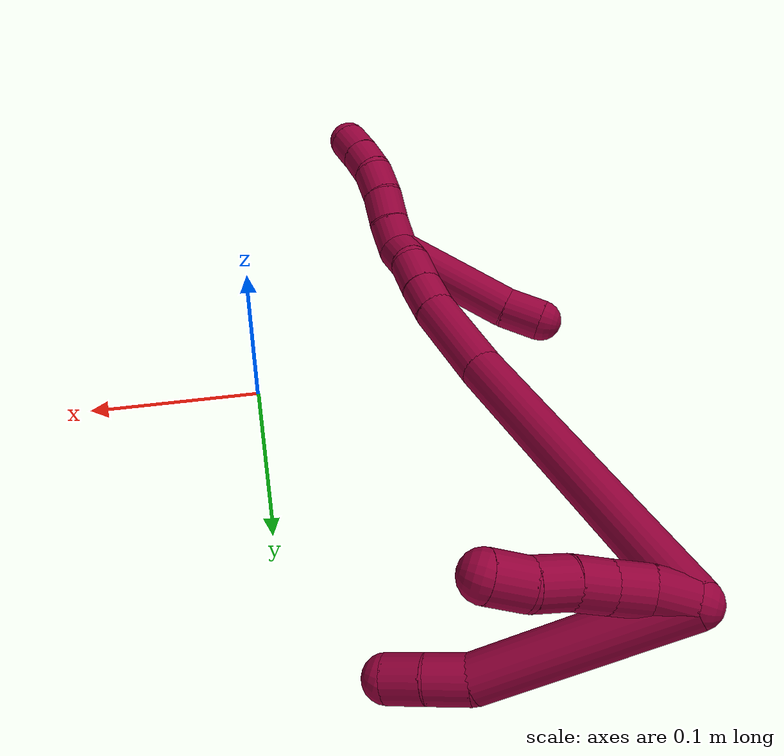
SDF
<sdf version="1.7">
 <world name="default">
  <model name="8">
   <static>0</static>
   <link name="8">
    <collision name="collision-cylinder-e_1_2_8">
     <pose>-0.021026 0.027389 -0.041438 -2.55755 -0.400426 1.18757</pose>
     <geometry><cylinder><radius>0.0125</radius><length>0.107876</length></cylinder></geometry>
     <surface>
      <friction><ode><mu>1.16</mu><mu2>1.16</mu2><slip1>0</slip1><slip2>0</slip2></ode></friction>
      <contact><ode><kp>1e+06</kp><kd>1</kd><max_vel>0</max_vel><min_depth>0.001</min_depth></ode></contact>
     </surface>
    </collision>
    <visual name="visual-cylinder-e_1_2_8">
     <pose>-0.021026 0.027389 -0.041438 -2.55755 -0.400426 1.18757</pose>
     <geometry><cylinder><radius>0.0125</radius><length>0.107876</length></cylinder></geometry>
     <material><ambient>0.584314 0 0.227451 1</ambient></material>
    </visual>
    <collision name="collision-cylinder-e_2_8_9">
     <pose>-0.044545 0.0577 -0.093182 -2.86531 -0.228727 1.38105</pose>
     <geometry><cylinder><radius>0.0125</radius><length>0.021998</length></cylinder></geometry>
     <surface>
      <friction><ode><mu>1.16</mu><mu2>1.16</mu2><slip1>0</slip1><slip2>0</slip2></ode></friction>
      <contact><ode><kp>1e+06</kp><kd>1</kd><max_vel>0</max_vel><min_depth>0.001</min_depth></ode></contact>
     </surface>
    </collision>
    <visual name="visual-cylinder-e_2_8_9">
     <pose>-0.044545 0.0577 -0.093182 -2.86531 -0.228727 1.38105</pose>
     <geometry><cylinder><radius>0.0125</radius><length>0.021998</length></cylinder></geometry>
     <material><ambient>0.584314 0 0.227451 1</ambient></material>
    </visual>
    <collision name="collision-cylinder-e_3_9_6">
     <pose>-0.050522 0.062978 -0.11263 -2.88938 -0.353454 1.90691</pose>
     <geometry><cylinder><radius>0.0125</radius><length>0.020126</length></cylinder></geometry>
     <surface>
      <friction><ode><mu>1.16</mu><mu2>1.16</mu2><slip1>0</slip1><slip2>0</slip2></ode></friction>
      <contact><ode><kp>1e+06</kp><kd>1</kd><max_vel>0</max_vel><min_depth>0.001</min_depth></ode></contact>
     </surface>
    </collision>
    <visual name="visual-cylinder-e_3_9_6">
     <pose>-0.050522 0.062978 -0.11263 -2.88938 -0.353454 1.90691</pose>
     <geometry><cylinder><radius>0.0125</radius><length>0.020126</length></cylinder></geometry>
     <material><ambient>0.584314 0 0.227451 1</ambient></material>
    </visual>
    <collision name="collision-cylinder-e_1_2_10">
     <pose>0.0001 0.000715 -0.009974 -3.07003 0.01003 -0.278403</pose>
     <geometry><cylinder><radius>0.0125</radius><length>0.02</length></cylinder></geometry>
     <surface>
      <friction><ode><mu>1.16</mu><mu2>1.16</mu2><slip1>0</slip1><slip2>0</slip2></ode></friction>
      <contact><ode><kp>1e+06</kp><kd>1</kd><max_vel>0</max_vel><min_depth>0.001</min_depth></ode></contact>
     </surface>
    </collision>
    <visual name="visual-cylinder-e_1_2_10">
     <pose>0.0001 0.000715 -0.009974 -3.07003 0.01003 -0.278403</pose>
     <geometry><cylinder><radius>0.0125</radius><length>0.02</length></cylinder></geometry>
     <material><ambient>0.584314 0 0.227451 1</ambient></material>
    </visual>
    <collision name="collision-cylinder-e_2_10_11">
     <pose>0.002502 0.004245 -0.029264 -2.84817 0.232176 -1.33615</pose>
     <geometry><cylinder><radius>0.0125</radius><length>0.02</length></cylinder></geometry>
     <surface>
      <friction><ode><mu>1.16</mu><mu2>1.16</mu2><slip1>0</slip1><slip2>0</slip2></ode></friction>
      <contact><ode><kp>1e+06</kp><kd>1</kd><max_vel>0</max_vel><min_depth>0.001</min_depth></ode></contact>
     </surface>
    </collision>
    <visual name="visual-cylinder-e_2_10_11">
     <pose>0.002502 0.004245 -0.029264 -2.84817 0.232176 -1.33615</pose>
     <geometry><cylinder><radius>0.0125</radius><length>0.02</length></cylinder></geometry>
     <material><ambient>0.584314 0 0.227451 1</ambient></material>
    </visual>
    <collision name="collision-cylinder-e_3_11_12">
     <pose>0.009054 0.010185 -0.047073 -2.78897 0.43917 -1.79421</pose>
     <geometry><cylinder><radius>0.0125</radius><length>0.02</length></cylinder></geometry>
     <surface>
      <friction><ode><mu>1.16</mu><mu2>1.16</mu2><slip1>0</slip1><slip2>0</slip2></ode></friction>
      <contact><ode><kp>1e+06</kp><kd>1</kd><max_vel>0</max_vel><min_depth>0.001</min_depth></ode></contact>
     </surface>
    </collision>
    <visual name="visual-cylinder-e_3_11_12">
     <pose>0.009054 0.010185 -0.047073 -2.78897 0.43917 -1.79421</pose>
     <geometry><cylinder><radius>0.0125</radius><length>0.02</length></cylinder></geometry>
     <material><ambient>0.584314 0 0.227451 1</ambient></material>
    </visual>
    <collision name="collision-cylinder-e_4_12_13">
     <pose>0.017129 0.017768 -0.063662 -2.63827 0.39227 -1.31583</pose>
     <geometry><cylinder><radius>0.0125</radius><length>0.02</length></cylinder></geometry>
     <surface>
      <friction><ode><mu>1.16</mu><mu2>1.16</mu2><slip1>0</slip1><slip2>0</slip2></ode></friction>
      <contact><ode><kp>1e+06</kp><kd>1</kd><max_vel>0</max_vel><min_depth>0.001</min_depth></ode></contact>
     </surface>
    </collision>
    <visual name="visual-cylinder-e_4_12_13">
     <pose>0.017129 0.017768 -0.063662 -2.63827 0.39227 -1.31583</pose>
     <geometry><cylinder><radius>0.0125</radius><length>0.02</length></cylinder></geometry>
     <material><ambient>0.584314 0 0.227451 1</ambient></material>
    </visual>
    <collision name="collision-cylinder-e_5_13_5">
     <pose>0.024269 0.024473 -0.080919 -2.90102 0.338145 -1.90934</pose>
     <geometry><cylinder><radius>0.0125</radius><length>0.02</length></cylinder></geometry>
     <surface>
      <friction><ode><mu>1.16</mu><mu2>1.16</mu2><slip1>0</slip1><slip2>0</slip2></ode></friction>
      <contact><ode><kp>1e+06</kp><kd>1</kd><max_vel>0</max_vel><min_depth>0.001</min_depth></ode></contact>
     </surface>
    </collision>
    <visual name="visual-cylinder-e_5_13_5">
     <pose>0.024269 0.024473 -0.080919 -2.90102 0.338145 -1.90934</pose>
     <geometry><cylinder><radius>0.0125</radius><length>0.02</length></cylinder></geometry>
     <material><ambient>0.584314 0 0.227451 1</ambient></material>
    </visual>
    <collision name="collision-cylinder-e_1_2_14">
     <pose>-0.031385 -0.057382 -0.062857 2.4017 -0.353286 -0.862763</pose>
     <geometry><cylinder><radius>0.0125</radius><length>0.181425</length></cylinder></geometry>
     <surface>
      <friction><ode><mu>1.16</mu><mu2>1.16</mu2><slip1>0</slip1><slip2>0</slip2></ode></friction>
      <contact><ode><kp>1e+06</kp><kd>1</kd><max_vel>0</max_vel><min_depth>0.001</min_depth></ode></contact>
     </surface>
    </collision>
    <visual name="visual-cylinder-e_1_2_14">
     <pose>-0.031385 -0.057382 -0.062857 2.4017 -0.353286 -0.862763</pose>
     <geometry><cylinder><radius>0.0125</radius><length>0.181425</length></cylinder></geometry>
     <material><ambient>0.584314 0 0.227451 1</ambient></material>
    </visual>
    <collision name="collision-cylinder-e_2_14_15">
     <pose>-0.069763 -0.133032 -0.145005 2.38343 -0.257374 -0.628185</pose>
     <geometry><cylinder><radius>0.0125</radius><length>0.054944</length></cylinder></geometry>
     <surface>
      <friction><ode><mu>1.16</mu><mu2>1.16</mu2><slip1>0</slip1><slip2>0</slip2></ode></friction>
      <contact><ode><kp>1e+06</kp><kd>1</kd><max_vel>0</max_vel><min_depth>0.001</min_depth></ode></contact>
     </surface>
    </collision>
    <visual name="visual-cylinder-e_2_14_15">
     <pose>-0.069763 -0.133032 -0.145005 2.38343 -0.257374 -0.628185</pose>
     <geometry><cylinder><radius>0.0125</radius><length>0.054944</length></cylinder></geometry>
     <material><ambient>0.584314 0 0.227451 1</ambient></material>
    </visual>
    <collision name="collision-cylinder-e_3_15_16">
     <pose>-0.078646 -0.158857 -0.170772 2.27929 -0.18773 -0.403723</pose>
     <geometry><cylinder><radius>0.0125</radius><length>0.020262</length></cylinder></geometry>
     <surface>
      <friction><ode><mu>1.16</mu><mu2>1.16</mu2><slip1>0</slip1><slip2>0</slip2></ode></friction>
      <contact><ode><kp>1e+06</kp><kd>1</kd><max_vel>0</max_vel><min_depth>0.001</min_depth></ode></contact>
     </surface>
    </collision>
    <visual name="visual-cylinder-e_3_15_16">
     <pose>-0.078646 -0.158857 -0.170772 2.27929 -0.18773 -0.403723</pose>
     <geometry><cylinder><radius>0.0125</radius><length>0.020262</length></cylinder></geometry>
     <material><ambient>0.584314 0 0.227451 1</ambient></material>
    </visual>
    <collision name="collision-cylinder-e_4_16_17">
     <pose>-0.082531 -0.174925 -0.183654 2.2161 -0.18507 -0.367833</pose>
     <geometry><cylinder><radius>0.0125</radius><length>0.021673</length></cylinder></geometry>
     <surface>
      <friction><ode><mu>1.16</mu><mu2>1.16</mu2><slip1>0</slip1><slip2>0</slip2></ode></friction>
      <contact><ode><kp>1e+06</kp><kd>1</kd><max_vel>0</max_vel><min_depth>0.001</min_depth></ode></contact>
     </surface>
    </collision>
    <visual name="visual-cylinder-e_4_16_17">
     <pose>-0.082531 -0.174925 -0.183654 2.2161 -0.18507 -0.367833</pose>
     <geometry><cylinder><radius>0.0125</radius><length>0.021673</length></cylinder></geometry>
     <material><ambient>0.584314 0 0.227451 1</ambient></material>
    </visual>
    <collision name="collision-cylinder-e_5_17_1">
     <pose>-0.089891 -0.190517 -0.196282 2.29156 -0.517441 -1.05823</pose>
     <geometry><cylinder><radius>0.0125</radius><length>0.021695</length></cylinder></geometry>
     <surface>
      <friction><ode><mu>1.16</mu><mu2>1.16</mu2><slip1>0</slip1><slip2>0</slip2></ode></friction>
      <contact><ode><kp>1e+06</kp><kd>1</kd><max_vel>0</max_vel><min_depth>0.001</min_depth></ode></contact>
     </surface>
    </collision>
    <visual name="visual-cylinder-e_5_17_1">
     <pose>-0.089891 -0.190517 -0.196282 2.29156 -0.517441 -1.05823</pose>
     <geometry><cylinder><radius>0.0125</radius><length>0.021695</length></cylinder></geometry>
     <material><ambient>0.584314 0 0.227451 1</ambient></material>
    </visual>
    <collision name="collision-cylinder-e_1_1_18">
     <pose>-0.093461 -0.205533 -0.208321 2.20348 0.180563 0.353538</pose>
     <geometry><cylinder><radius>0.0125</radius><length>0.02</length></cylinder></geometry>
     <surface>
      <friction><ode><mu>1.16</mu><mu2>1.16</mu2><slip1>0</slip1><slip2>0</slip2></ode></friction>
      <contact><ode><kp>1e+06</kp><kd>1</kd><max_vel>0</max_vel><min_depth>0.001</min_depth></ode></contact>
     </surface>
    </collision>
    <visual name="visual-cylinder-e_1_1_18">
     <pose>-0.093461 -0.205533 -0.208321 2.20348 0.180563 0.353538</pose>
     <geometry><cylinder><radius>0.0125</radius><length>0.02</length></cylinder></geometry>
     <material><ambient>0.584314 0 0.227451 1</ambient></material>
    </visual>
    <collision name="collision-cylinder-e_2_18_19">
     <pose>-0.090392 -0.221968 -0.219249 2.11208 0.12766 0.225051</pose>
     <geometry><cylinder><radius>0.0125</radius><length>0.02</length></cylinder></geometry>
     <surface>
      <friction><ode><mu>1.16</mu><mu2>1.16</mu2><slip1>0</slip1><slip2>0</slip2></ode></friction>
      <contact><ode><kp>1e+06</kp><kd>1</kd><max_vel>0</max_vel><min_depth>0.001</min_depth></ode></contact>
     </surface>
    </collision>
    <visual name="visual-cylinder-e_2_18_19">
     <pose>-0.090392 -0.221968 -0.219249 2.11208 0.12766 0.225051</pose>
     <geometry><cylinder><radius>0.0125</radius><length>0.02</length></cylinder></geometry>
     <material><ambient>0.584314 0 0.227451 1</ambient></material>
    </visual>
    <collision name="collision-cylinder-e_3_19_20">
     <pose>-0.088873 -0.238496 -0.230317 2.20929 0.024657 0.049</pose>
     <geometry><cylinder><radius>0.0125</radius><length>0.02</length></cylinder></geometry>
     <surface>
      <friction><ode><mu>1.16</mu><mu2>1.16</mu2><slip1>0</slip1><slip2>0</slip2></ode></friction>
      <contact><ode><kp>1e+06</kp><kd>1</kd><max_vel>0</max_vel><min_depth>0.001</min_depth></ode></contact>
     </surface>
    </collision>
    <visual name="visual-cylinder-e_3_19_20">
     <pose>-0.088873 -0.238496 -0.230317 2.20929 0.024657 0.049</pose>
     <geometry><cylinder><radius>0.0125</radius><length>0.02</length></cylinder></geometry>
     <material><ambient>0.584314 0 0.227451 1</ambient></material>
    </visual>
    <collision name="collision-cylinder-e_4_20_21">
     <pose>-0.091044 -0.253617 -0.242896 2.32175 -0.244266 -0.550597</pose>
     <geometry><cylinder><radius>0.0125</radius><length>0.02</length></cylinder></geometry>
     <surface>
      <friction><ode><mu>1.16</mu><mu2>1.16</mu2><slip1>0</slip1><slip2>0</slip2></ode></friction>
      <contact><ode><kp>1e+06</kp><kd>1</kd><max_vel>0</max_vel><min_depth>0.001</min_depth></ode></contact>
     </surface>
    </collision>
    <visual name="visual-cylinder-e_4_20_21">
     <pose>-0.091044 -0.253617 -0.242896 2.32175 -0.244266 -0.550597</pose>
     <geometry><cylinder><radius>0.0125</radius><length>0.02</length></cylinder></geometry>
     <material><ambient>0.584314 0 0.227451 1</ambient></material>
    </visual>
    <collision name="collision-cylinder-e_5_21_4">
     <pose>-0.095948 -0.267381 -0.25654 2.38188 -0.25118 -0.612562</pose>
     <geometry><cylinder><radius>0.0125</radius><length>0.02</length></cylinder></geometry>
     <surface>
      <friction><ode><mu>1.16</mu><mu2>1.16</mu2><slip1>0</slip1><slip2>0</slip2></ode></friction>
      <contact><ode><kp>1e+06</kp><kd>1</kd><max_vel>0</max_vel><min_depth>0.001</min_depth></ode></contact>
     </surface>
    </collision>
    <visual name="visual-cylinder-e_5_21_4">
     <pose>-0.095948 -0.267381 -0.25654 2.38188 -0.25118 -0.612562</pose>
     <geometry><cylinder><radius>0.0125</radius><length>0.02</length></cylinder></geometry>
     <material><ambient>0.584314 0 0.227451 1</ambient></material>
    </visual>
    <collision name="collision-cylinder-e_1_1_22">
     <pose>-0.099664 -0.1901 -0.165057 -0.197681 -0.114878 0.011404</pose>
     <geometry><cylinder><radius>0.0125</radius><length>0.076888</length></cylinder></geometry>
     <surface>
      <friction><ode><mu>1.16</mu><mu2>1.16</mu2><slip1>0</slip1><slip2>0</slip2></ode></friction>
      <contact><ode><kp>1e+06</kp><kd>1</kd><max_vel>0</max_vel><min_depth>0.001</min_depth></ode></contact>
     </surface>
    </collision>
    <visual name="visual-cylinder-e_1_1_22">
     <pose>-0.099664 -0.1901 -0.165057 -0.197681 -0.114878 0.011404</pose>
     <geometry><cylinder><radius>0.0125</radius><length>0.076888</length></cylinder></geometry>
     <material><ambient>0.584314 0 0.227451 1</ambient></material>
    </visual>
    <collision name="collision-cylinder-e_2_22_3">
     <pose>-0.104436 -0.181768 -0.11609 -0.072013 -0.031624 0.001139</pose>
     <geometry><cylinder><radius>0.0125</radius><length>0.023112</length></cylinder></geometry>
     <surface>
      <friction><ode><mu>1.16</mu><mu2>1.16</mu2><slip1>0</slip1><slip2>0</slip2></ode></friction>
      <contact><ode><kp>1e+06</kp><kd>1</kd><max_vel>0</max_vel><min_depth>0.001</min_depth></ode></contact>
     </surface>
    </collision>
    <visual name="visual-cylinder-e_2_22_3">
     <pose>-0.104436 -0.181768 -0.11609 -0.072013 -0.031624 0.001139</pose>
     <geometry><cylinder><radius>0.0125</radius><length>0.023112</length></cylinder></geometry>
     <material><ambient>0.584314 0 0.227451 1</ambient></material>
    </visual>
    <collision name="collision-sphere-3">
     <pose>-0.104801 -0.180937 -0.10457 0 -0 0</pose>
     <geometry><sphere><radius>0.0125</radius></sphere></geometry>
     <surface>
      <friction><ode><mu>1.16</mu><mu2>1.16</mu2><slip1>0</slip1><slip2>0</slip2></ode></friction>
      <contact><ode><kp>1e+06</kp><kd>1</kd><max_vel>0</max_vel><min_depth>0.001</min_depth></ode></contact>
     </surface>
    </collision>
    <visual name="visual-sphere-3">
     <pose>-0.104801 -0.180937 -0.10457 0 -0 0</pose>
     <geometry><sphere><radius>0.0125</radius></sphere></geometry>
     <material><ambient>0.584314 0 0.227451 1</ambient></material>
    </visual>
    <collision name="collision-sphere-22">
     <pose>-0.10407 -0.182599 -0.12761 0 -0 0</pose>
     <geometry><sphere><radius>0.0125</radius></sphere></geometry>
     <surface>
      <friction><ode><mu>1.16</mu><mu2>1.16</mu2><slip1>0</slip1><slip2>0</slip2></ode></friction>
      <contact><ode><kp>1e+06</kp><kd>1</kd><max_vel>0</max_vel><min_depth>0.001</min_depth></ode></contact>
     </surface>
    </collision>
    <visual name="visual-sphere-22">
     <pose>-0.10407 -0.182599 -0.12761 0 -0 0</pose>
     <geometry><sphere><radius>0.0125</radius></sphere></geometry>
     <material><ambient>0.584314 0 0.227451 1</ambient></material>
    </visual>
    <collision name="collision-sphere-4">
     <pose>-0.098434 -0.274052 -0.263562 0 -0 0</pose>
     <geometry><sphere><radius>0.0125</radius></sphere></geometry>
     <surface>
      <friction><ode><mu>1.16</mu><mu2>1.16</mu2><slip1>0</slip1><slip2>0</slip2></ode></friction>
      <contact><ode><kp>1e+06</kp><kd>1</kd><max_vel>0</max_vel><min_depth>0.001</min_depth></ode></contact>
     </surface>
    </collision>
    <visual name="visual-sphere-4">
     <pose>-0.098434 -0.274052 -0.263562 0 -0 0</pose>
     <geometry><sphere><radius>0.0125</radius></sphere></geometry>
     <material><ambient>0.584314 0 0.227451 1</ambient></material>
    </visual>
    <collision name="collision-sphere-21">
     <pose>-0.093463 -0.26071 -0.249517 0 -0 0</pose>
     <geometry><sphere><radius>0.0125</radius></sphere></geometry>
     <surface>
      <friction><ode><mu>1.16</mu><mu2>1.16</mu2><slip1>0</slip1><slip2>0</slip2></ode></friction>
      <contact><ode><kp>1e+06</kp><kd>1</kd><max_vel>0</max_vel><min_depth>0.001</min_depth></ode></contact>
     </surface>
    </collision>
    <visual name="visual-sphere-21">
     <pose>-0.093463 -0.26071 -0.249517 0 -0 0</pose>
     <geometry><sphere><radius>0.0125</radius></sphere></geometry>
     <material><ambient>0.584314 0 0.227451 1</ambient></material>
    </visual>
    <collision name="collision-sphere-20">
     <pose>-0.088626 -0.246523 -0.236275 0 -0 0</pose>
     <geometry><sphere><radius>0.0125</radius></sphere></geometry>
     <surface>
      <friction><ode><mu>1.16</mu><mu2>1.16</mu2><slip1>0</slip1><slip2>0</slip2></ode></friction>
      <contact><ode><kp>1e+06</kp><kd>1</kd><max_vel>0</max_vel><min_depth>0.001</min_depth></ode></contact>
     </surface>
    </collision>
    <visual name="visual-sphere-20">
     <pose>-0.088626 -0.246523 -0.236275 0 -0 0</pose>
     <geometry><sphere><radius>0.0125</radius></sphere></geometry>
     <material><ambient>0.584314 0 0.227451 1</ambient></material>
    </visual>
    <collision name="collision-sphere-11">
     <pose>0.004803 0.007059 -0.038579 0 -0 0</pose>
     <geometry><sphere><radius>0.0125</radius></sphere></geometry>
     <surface>
      <friction><ode><mu>1.16</mu><mu2>1.16</mu2><slip1>0</slip1><slip2>0</slip2></ode></friction>
      <contact><ode><kp>1e+06</kp><kd>1</kd><max_vel>0</max_vel><min_depth>0.001</min_depth></ode></contact>
     </surface>
    </collision>
    <visual name="visual-sphere-11">
     <pose>0.004803 0.007059 -0.038579 0 -0 0</pose>
     <geometry><sphere><radius>0.0125</radius></sphere></geometry>
     <material><ambient>0.584314 0 0.227451 1</ambient></material>
    </visual>
    <collision name="collision-sphere-10">
     <pose>0.000201 0.00143 -0.019948 0 -0 0</pose>
     <geometry><sphere><radius>0.0125</radius></sphere></geometry>
     <surface>
      <friction><ode><mu>1.16</mu><mu2>1.16</mu2><slip1>0</slip1><slip2>0</slip2></ode></friction>
      <contact><ode><kp>1e+06</kp><kd>1</kd><max_vel>0</max_vel><min_depth>0.001</min_depth></ode></contact>
     </surface>
    </collision>
    <visual name="visual-sphere-10">
     <pose>0.000201 0.00143 -0.019948 0 -0 0</pose>
     <geometry><sphere><radius>0.0125</radius></sphere></geometry>
     <material><ambient>0.584314 0 0.227451 1</ambient></material>
    </visual>
    <collision name="collision-sphere-6">
     <pose>-0.054005 0.065334 -0.121772 0 -0 0</pose>
     <geometry><sphere><radius>0.0125</radius></sphere></geometry>
     <surface>
      <friction><ode><mu>1.16</mu><mu2>1.16</mu2><slip1>0</slip1><slip2>0</slip2></ode></friction>
      <contact><ode><kp>1e+06</kp><kd>1</kd><max_vel>0</max_vel><min_depth>0.001</min_depth></ode></contact>
     </surface>
    </collision>
    <visual name="visual-sphere-6">
     <pose>-0.054005 0.065334 -0.121772 0 -0 0</pose>
     <geometry><sphere><radius>0.0125</radius></sphere></geometry>
     <material><ambient>0.584314 0 0.227451 1</ambient></material>
    </visual>
    <collision name="collision-sphere-9">
     <pose>-0.047039 0.060622 -0.103488 0 -0 0</pose>
     <geometry><sphere><radius>0.0125</radius></sphere></geometry>
     <surface>
      <friction><ode><mu>1.16</mu><mu2>1.16</mu2><slip1>0</slip1><slip2>0</slip2></ode></friction>
      <contact><ode><kp>1e+06</kp><kd>1</kd><max_vel>0</max_vel><min_depth>0.001</min_depth></ode></contact>
     </surface>
    </collision>
    <visual name="visual-sphere-9">
     <pose>-0.047039 0.060622 -0.103488 0 -0 0</pose>
     <geometry><sphere><radius>0.0125</radius></sphere></geometry>
     <material><ambient>0.584314 0 0.227451 1</ambient></material>
    </visual>
    <collision name="collision-sphere-2">
     <geometry><sphere><radius>0.0125</radius></sphere></geometry>
     <surface>
      <friction><ode><mu>1.16</mu><mu2>1.16</mu2><slip1>0</slip1><slip2>0</slip2></ode></friction>
      <contact><ode><kp>1e+06</kp><kd>1</kd><max_vel>0</max_vel><min_depth>0.001</min_depth></ode></contact>
     </surface>
    </collision>
    <visual name="visual-sphere-2">
     <geometry><sphere><radius>0.0125</radius></sphere></geometry>
     <material><ambient>0.584314 0 0.227451 1</ambient></material>
    </visual>
    <collision name="collision-sphere-19">
     <pose>-0.089119 -0.230468 -0.224359 0 -0 0</pose>
     <geometry><sphere><radius>0.0125</radius></sphere></geometry>
     <surface>
      <friction><ode><mu>1.16</mu><mu2>1.16</mu2><slip1>0</slip1><slip2>0</slip2></ode></friction>
      <contact><ode><kp>1e+06</kp><kd>1</kd><max_vel>0</max_vel><min_depth>0.001</min_depth></ode></contact>
     </surface>
    </collision>
    <visual name="visual-sphere-19">
     <pose>-0.089119 -0.230468 -0.224359 0 -0 0</pose>
     <geometry><sphere><radius>0.0125</radius></sphere></geometry>
     <material><ambient>0.584314 0 0.227451 1</ambient></material>
    </visual>
    <collision name="collision-sphere-8">
     <pose>-0.042051 0.054778 -0.082875 0 -0 0</pose>
     <geometry><sphere><radius>0.0125</radius></sphere></geometry>
     <surface>
      <friction><ode><mu>1.16</mu><mu2>1.16</mu2><slip1>0</slip1><slip2>0</slip2></ode></friction>
      <contact><ode><kp>1e+06</kp><kd>1</kd><max_vel>0</max_vel><min_depth>0.001</min_depth></ode></contact>
     </surface>
    </collision>
    <visual name="visual-sphere-8">
     <pose>-0.042051 0.054778 -0.082875 0 -0 0</pose>
     <geometry><sphere><radius>0.0125</radius></sphere></geometry>
     <material><ambient>0.584314 0 0.227451 1</ambient></material>
    </visual>
    <collision name="collision-sphere-12">
     <pose>0.013306 0.013311 -0.055568 0 -0 0</pose>
     <geometry><sphere><radius>0.0125</radius></sphere></geometry>
     <surface>
      <friction><ode><mu>1.16</mu><mu2>1.16</mu2><slip1>0</slip1><slip2>0</slip2></ode></friction>
      <contact><ode><kp>1e+06</kp><kd>1</kd><max_vel>0</max_vel><min_depth>0.001</min_depth></ode></contact>
     </surface>
    </collision>
    <visual name="visual-sphere-12">
     <pose>0.013306 0.013311 -0.055568 0 -0 0</pose>
     <geometry><sphere><radius>0.0125</radius></sphere></geometry>
     <material><ambient>0.584314 0 0.227451 1</ambient></material>
    </visual>
    <collision name="collision-sphere-13">
     <pose>0.020952 0.022225 -0.071756 0 -0 0</pose>
     <geometry><sphere><radius>0.0125</radius></sphere></geometry>
     <surface>
      <friction><ode><mu>1.16</mu><mu2>1.16</mu2><slip1>0</slip1><slip2>0</slip2></ode></friction>
      <contact><ode><kp>1e+06</kp><kd>1</kd><max_vel>0</max_vel><min_depth>0.001</min_depth></ode></contact>
     </surface>
    </collision>
    <visual name="visual-sphere-13">
     <pose>0.020952 0.022225 -0.071756 0 -0 0</pose>
     <geometry><sphere><radius>0.0125</radius></sphere></geometry>
     <material><ambient>0.584314 0 0.227451 1</ambient></material>
    </visual>
    <collision name="collision-sphere-5">
     <pose>0.027587 0.026721 -0.090081 0 -0 0</pose>
     <geometry><sphere><radius>0.0125</radius></sphere></geometry>
     <surface>
      <friction><ode><mu>1.16</mu><mu2>1.16</mu2><slip1>0</slip1><slip2>0</slip2></ode></friction>
      <contact><ode><kp>1e+06</kp><kd>1</kd><max_vel>0</max_vel><min_depth>0.001</min_depth></ode></contact>
     </surface>
    </collision>
    <visual name="visual-sphere-5">
     <pose>0.027587 0.026721 -0.090081 0 -0 0</pose>
     <geometry><sphere><radius>0.0125</radius></sphere></geometry>
     <material><ambient>0.584314 0 0.227451 1</ambient></material>
    </visual>
    <collision name="collision-sphere-14">
     <pose>-0.06277 -0.114765 -0.125715 0 -0 0</pose>
     <geometry><sphere><radius>0.0125</radius></sphere></geometry>
     <surface>
      <friction><ode><mu>1.16</mu><mu2>1.16</mu2><slip1>0</slip1><slip2>0</slip2></ode></friction>
      <contact><ode><kp>1e+06</kp><kd>1</kd><max_vel>0</max_vel><min_depth>0.001</min_depth></ode></contact>
     </surface>
    </collision>
    <visual name="visual-sphere-14">
     <pose>-0.06277 -0.114765 -0.125715 0 -0 0</pose>
     <geometry><sphere><radius>0.0125</radius></sphere></geometry>
     <material><ambient>0.584314 0 0.227451 1</ambient></material>
    </visual>
    <collision name="collision-sphere-15">
     <pose>-0.076756 -0.151299 -0.164296 0 -0 0</pose>
     <geometry><sphere><radius>0.0125</radius></sphere></geometry>
     <surface>
      <friction><ode><mu>1.16</mu><mu2>1.16</mu2><slip1>0</slip1><slip2>0</slip2></ode></friction>
      <contact><ode><kp>1e+06</kp><kd>1</kd><max_vel>0</max_vel><min_depth>0.001</min_depth></ode></contact>
     </surface>
    </collision>
    <visual name="visual-sphere-15">
     <pose>-0.076756 -0.151299 -0.164296 0 -0 0</pose>
     <geometry><sphere><radius>0.0125</radius></sphere></geometry>
     <material><ambient>0.584314 0 0.227451 1</ambient></material>
    </visual>
    <collision name="collision-sphere-16">
     <pose>-0.080537 -0.166415 -0.177248 0 -0 0</pose>
     <geometry><sphere><radius>0.0125</radius></sphere></geometry>
     <surface>
      <friction><ode><mu>1.16</mu><mu2>1.16</mu2><slip1>0</slip1><slip2>0</slip2></ode></friction>
      <contact><ode><kp>1e+06</kp><kd>1</kd><max_vel>0</max_vel><min_depth>0.001</min_depth></ode></contact>
     </surface>
    </collision>
    <visual name="visual-sphere-16">
     <pose>-0.080537 -0.166415 -0.177248 0 -0 0</pose>
     <geometry><sphere><radius>0.0125</radius></sphere></geometry>
     <material><ambient>0.584314 0 0.227451 1</ambient></material>
    </visual>
    <collision name="collision-sphere-17">
     <pose>-0.084525 -0.183434 -0.190061 0 -0 0</pose>
     <geometry><sphere><radius>0.0125</radius></sphere></geometry>
     <surface>
      <friction><ode><mu>1.16</mu><mu2>1.16</mu2><slip1>0</slip1><slip2>0</slip2></ode></friction>
      <contact><ode><kp>1e+06</kp><kd>1</kd><max_vel>0</max_vel><min_depth>0.001</min_depth></ode></contact>
     </surface>
    </collision>
    <visual name="visual-sphere-17">
     <pose>-0.084525 -0.183434 -0.190061 0 -0 0</pose>
     <geometry><sphere><radius>0.0125</radius></sphere></geometry>
     <material><ambient>0.584314 0 0.227451 1</ambient></material>
    </visual>
    <collision name="collision-sphere-1">
     <pose>-0.095257 -0.1976 -0.202504 0 -0 0</pose>
     <geometry><sphere><radius>0.0125</radius></sphere></geometry>
     <surface>
      <friction><ode><mu>1.16</mu><mu2>1.16</mu2><slip1>0</slip1><slip2>0</slip2></ode></friction>
      <contact><ode><kp>1e+06</kp><kd>1</kd><max_vel>0</max_vel><min_depth>0.001</min_depth></ode></contact>
     </surface>
    </collision>
    <visual name="visual-sphere-1">
     <pose>-0.095257 -0.1976 -0.202504 0 -0 0</pose>
     <geometry><sphere><radius>0.0125</radius></sphere></geometry>
     <material><ambient>0.584314 0 0.227451 1</ambient></material>
    </visual>
    <collision name="collision-sphere-18">
     <pose>-0.091665 -0.213467 -0.214138 0 -0 0</pose>
     <geometry><sphere><radius>0.0125</radius></sphere></geometry>
     <surface>
      <friction><ode><mu>1.16</mu><mu2>1.16</mu2><slip1>0</slip1><slip2>0</slip2></ode></friction>
      <contact><ode><kp>1e+06</kp><kd>1</kd><max_vel>0</max_vel><min_depth>0.001</min_depth></ode></contact>
     </surface>
    </collision>
    <visual name="visual-sphere-18">
     <pose>-0.091665 -0.213467 -0.214138 0 -0 0</pose>
     <geometry><sphere><radius>0.0125</radius></sphere></geometry>
     <material><ambient>0.584314 0 0.227451 1</ambient></material>
    </visual>
    <inertial>
     <pose>-0.049779 -0.086375 -0.11066 0 -0 0</pose>
     <mass>0.75</mass>
     <inertia>
      <ixx>0.00012</ixx>
      <ixy>0</ixy>
      <ixz>0</ixz>
      <iyy>-0.000431</iyy>
      <iyz>0</iyz>
      <izz>0.00047</izz>
     </inertia>
    </inertial>
   </link>
   <pose>-0.179912 0.205658 0.076516 -1.69083 -1.34419 1.20635</pose>
  </model>
 </world>
</sdf>
